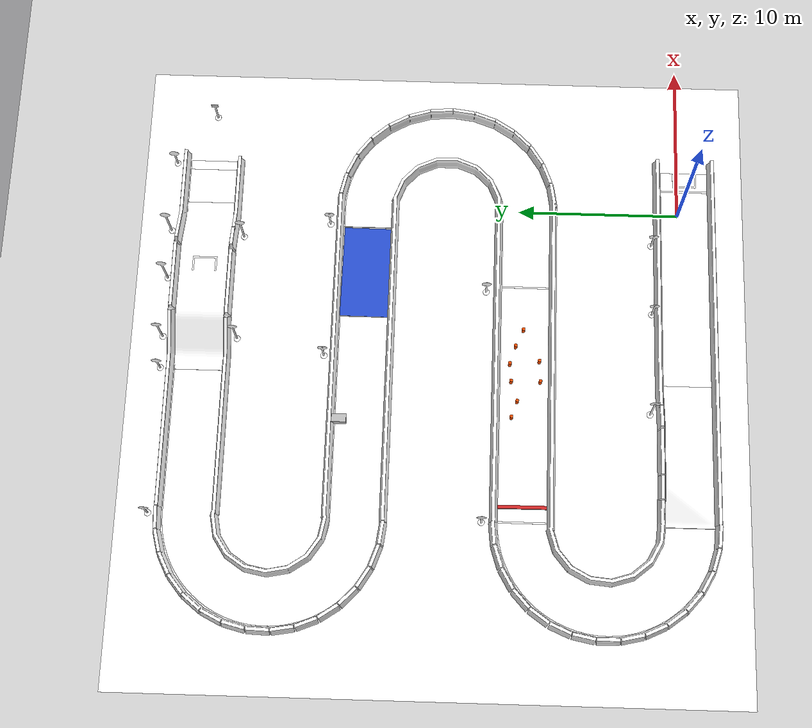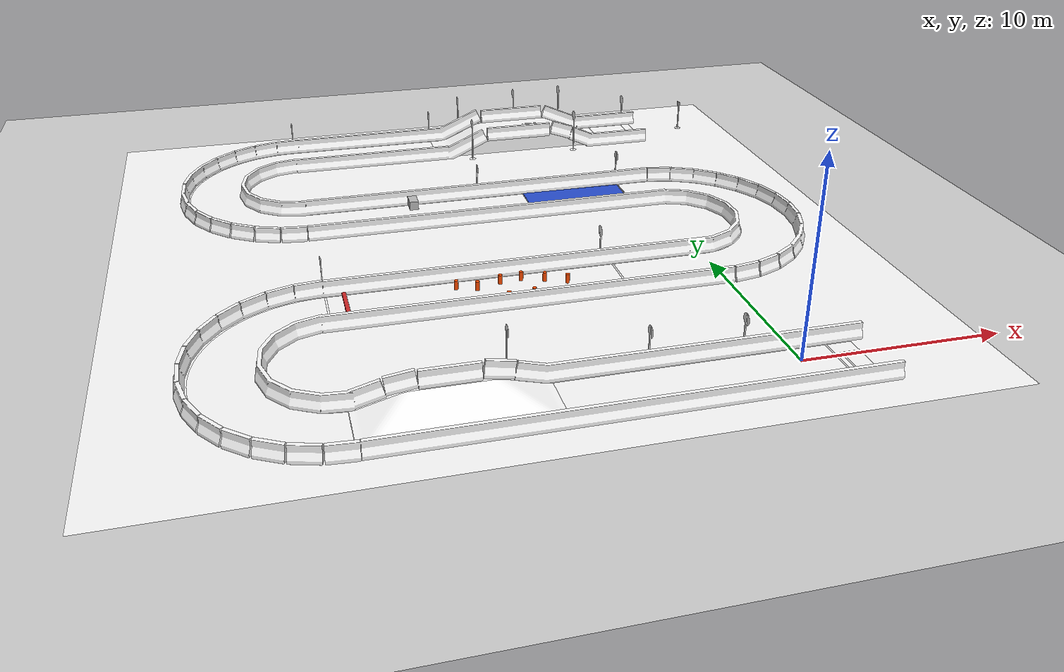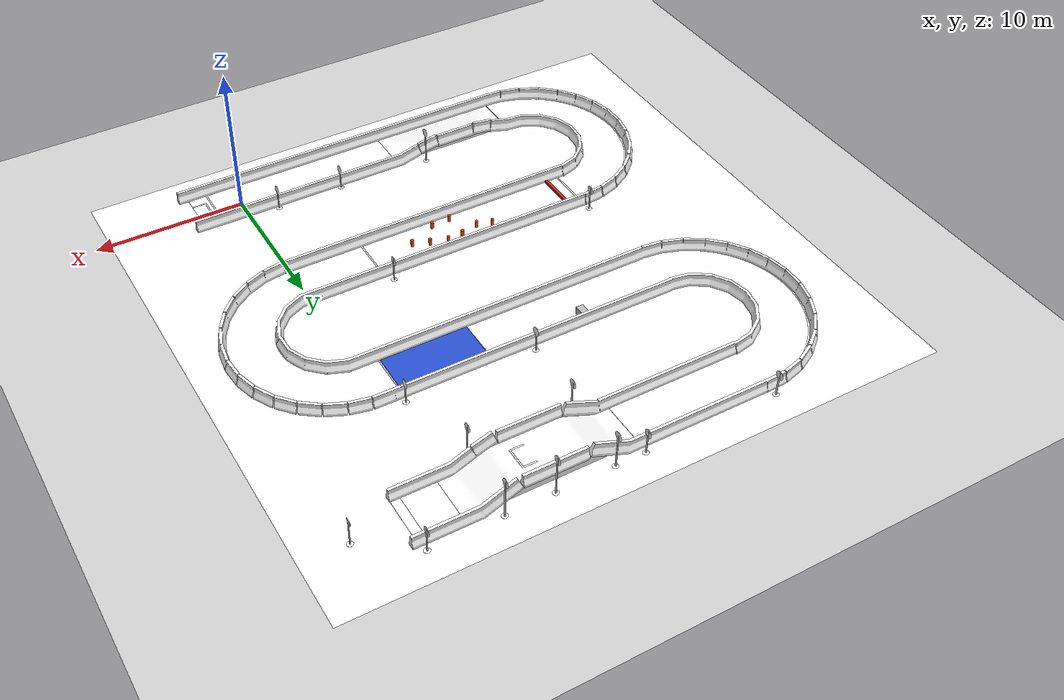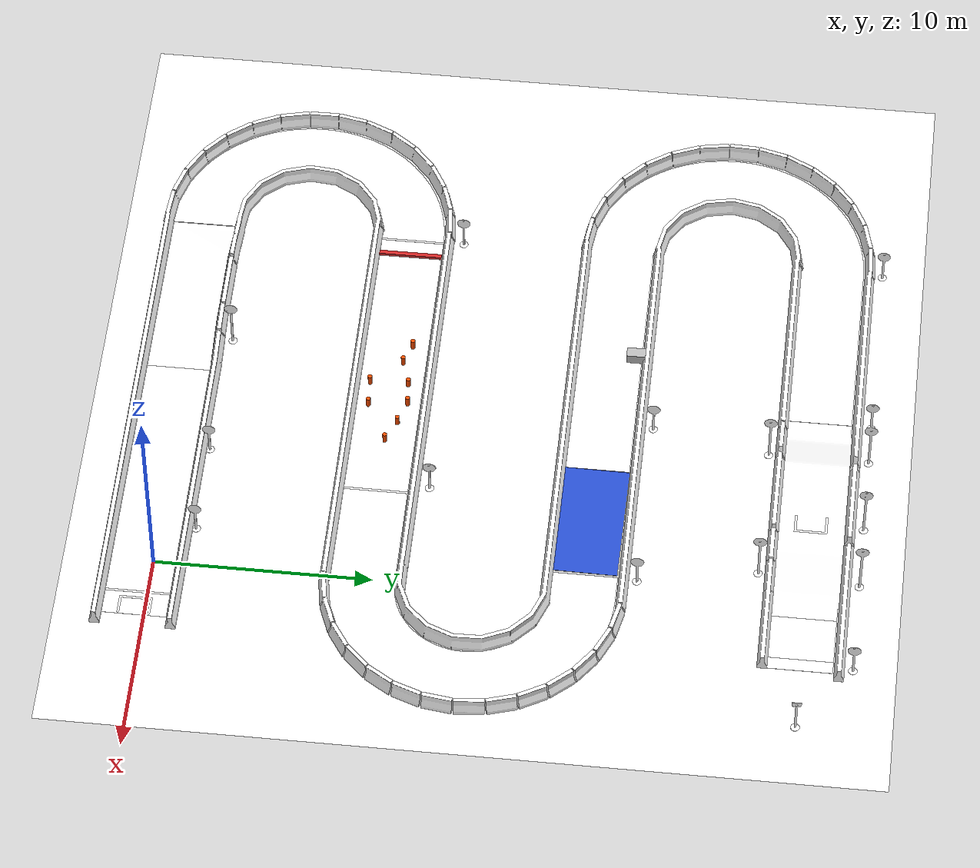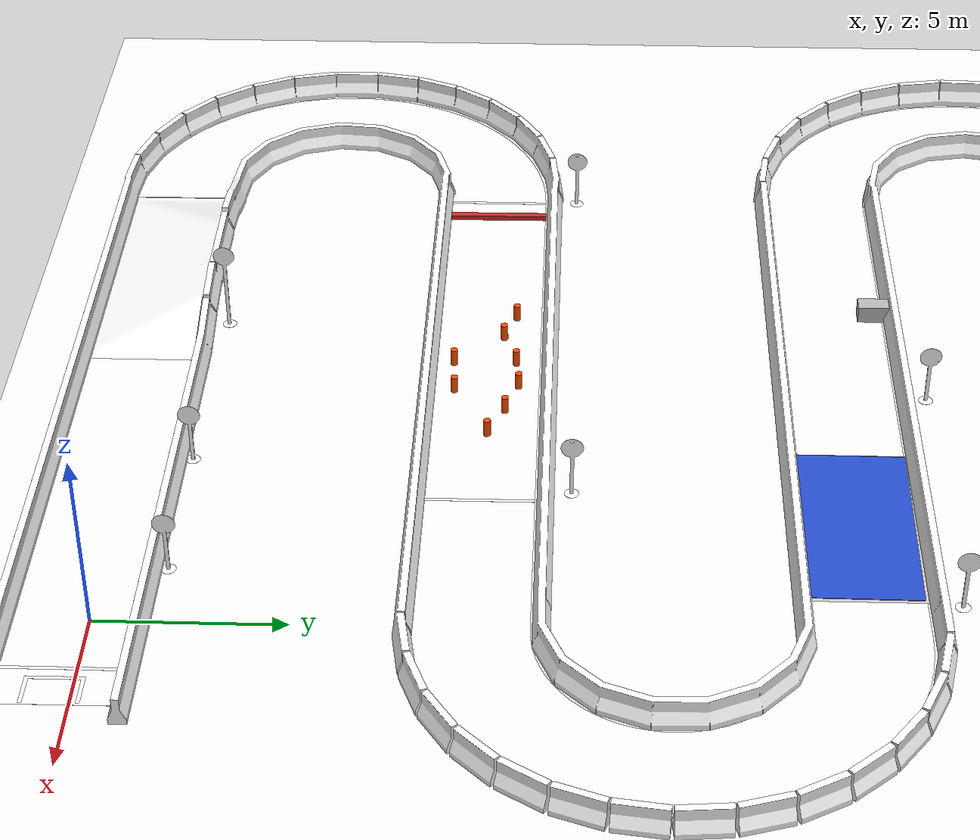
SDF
<?xml version="1.0" ?>
<sdf version="1.6">
  <world name="teknofest_parkur">

    <scene>
      <ambient>0.8 0.8 0.8 1.0</ambient>
      <background>0.7 0.7 0.7 1.0</background>
      <shadows>true</shadows>
    </scene>

    <include>
      <uri>model://sun</uri>
    </include>

    <include>
      <uri>model://ground_plane</uri>
    </include>

    <include>
      <uri>model://benim_kayar_engelim</uri>
      <name>kayar_engel_otomatik</name>
      <pose>-13.915580 20.793696 0.254990 0 0 0</pose>
    </include>

    <model name="ana_yol">
      <static>true</static>
      <pose>0 0 0.005 0 0 0</pose>
      <include>
        <uri>model://yol</uri>
      </include>
    </model>

    <gui fullscreen='0'>
      <camera name='user_camera'>
        <pose>5 -5 5 0 0.5 2.5</pose>
      </camera>
    </gui>

    <model name="bariyer_1">
      <static>true</static>
      <pose>-0.068165 0.057319 0.0 0 0 0</pose>
      <link name="bariyer_link">
        <visual name="bariyer_visual">
          <geometry>
            <mesh>
              <uri>file:///home/salih/Desktop/ika/src/ika_main/meshes/bariyer.dae</uri>
            </mesh>
          </geometry>
        </visual>
        <collision name="bariyer_collision">
          <geometry>
            <mesh>
              <uri>file:///home/salih/Desktop/ika/src/ika_main/meshes/bariyer.dae</uri>
            </mesh>
          </geometry>
        </collision>
      </link>
    </model>

    <model name="yan_egim_engeli">
      <static>true</static>
      <pose>0.024816 0.004860 0.0 0 0 0</pose>
      <link name="yan_egim_link">
        <visual name="yan_egim_visual">
          <geometry>
            <mesh>
              <uri>file:///home/salih/Desktop/ika/src/ika_main/meshes/yan_egim.dae</uri>
            </mesh>
          </geometry>
        </visual>
        <collision name="yan_egim_collision">
          <geometry>
            <mesh>
              <uri>file:///home/salih/Desktop/ika/src/ika_main/meshes/yan_egim.dae</uri>
            </mesh>
          </geometry>
        </collision>
      </link>
    </model>

    <model name="tum_tabelalar">
      <static>true</static>
      <pose>0.0 0.0 0.0 0 0 0</pose>
      <link name="tabela_link">
        <visual name="tabela_visual">
          <geometry>
            <mesh>
              <uri>file:///home/salih/Desktop/ika/src/ika_main/meshes/tabelalar.dae</uri>
            </mesh>
          </geometry>
        </visual>
        <collision name="tabela_collision">
          <geometry>
            <mesh>
              <uri>file:///home/salih/Desktop/ika/src/ika_main/meshes/tabelalar.dae</uri>
            </mesh>
          </geometry>
        </collision>
      </link>
    </model>

    <model name="dik_egim_engeli">
      <static>true</static>
      <pose>0.004304 0.050766 0.002 0 0 0</pose>
      <link name="dik_egim_link">
        <visual name="dik_egim_visual">
          <geometry>
            <mesh>
              <uri>file:///home/salih/Desktop/ika/src/ika_main/meshes/dik_egim.dae</uri>
            </mesh>
          </geometry>
        </visual>
        <collision name="dik_egim_collision">
          <geometry>
            <mesh>
              <uri>file:///home/salih/Desktop/ika/src/ika_main/meshes/dik_egim.dae</uri>
            </mesh>
          </geometry>
        </collision>
      </link>
    </model>

    <model name="zemin_model">
      <static>true</static>
      <pose>0.0 0.0 0.002 0 0 0</pose>
      <link name="zemin_link">
        <visual name="zemin_visual">
          <geometry>
            <mesh>
              <uri>file:///home/salih/Desktop/ika/src/ika_main/meshes/zemin.dae</uri>
            </mesh>
          </geometry>
        </visual>
        <collision name="zemin_collision">
          <geometry>
            <mesh>
              <uri>file:///home/salih/Desktop/ika/src/ika_main/meshes/zemin.dae</uri>
            </mesh>
          </geometry>
        </collision>
      </link>
    </model>

    <model name="cizgiler_model">
      <static>true</static>
      <pose>0.0 0.0 0.01 0 0 0</pose>
      <link name="cizgiler_link">
        <visual name="cizgiler_visual">
          <geometry>
            <mesh>
              <uri>file:///home/salih/Desktop/ika/src/ika_main/meshes/cizgiler.dae</uri>
            </mesh>
          </geometry>
        </visual>
      </link>
    </model>

    <model name='turuncu_duba_1'>
      <static>1</static>
      <pose>-13.518878 10.286131 0.250000 0 0 0</pose>
      <link name='link'>
        <collision name='collision'><geometry><cylinder><radius>0.1</radius><length>0.5</length></cylinder></geometry></collision>
        <visual name='visual'><geometry><cylinder><radius>0.1</radius><length>0.5</length></cylinder></geometry>
        <material><ambient>1 0.3 0 1</ambient><diffuse>1 0.3 0 1</diffuse></material></visual>
      </link>
    </model>

    <model name='turuncu_duba_2'>
      <static>1</static>
      <pose>-12.511695 9.943221 0.250000 0 0 0</pose>
      <link name='link'>
        <collision name='collision'><geometry><cylinder><radius>0.1</radius><length>0.5</length></cylinder></geometry></collision>
        <visual name='visual'><geometry><cylinder><radius>0.1</radius><length>0.5</length></cylinder></geometry>
        <material><ambient>1 0.3 0 1</ambient><diffuse>1 0.3 0 1</diffuse></material></visual>
      </link>
    </model>

    <model name='turuncu_duba_3'>
      <static>1</static>
      <pose>-10.139262 10.423759 0.250000 0 0 0</pose>
      <link name='link'>
        <collision name='collision'><geometry><cylinder><radius>0.1</radius><length>0.5</length></cylinder></geometry></collision>
        <visual name='visual'><geometry><cylinder><radius>0.1</radius><length>0.5</length></cylinder></geometry>
        <material><ambient>1 0.3 0 1</ambient><diffuse>1 0.3 0 1</diffuse></material></visual>
      </link>
    </model>

    <model name='turuncu_duba_4'>
      <static>1</static>
      <pose>-9.923812 8.613922 0.250000 0 0 0</pose>
      <link name='link'>
        <collision name='collision'><geometry><cylinder><radius>0.1</radius><length>0.5</length></cylinder></geometry></collision>
        <visual name='visual'><geometry><cylinder><radius>0.1</radius><length>0.5</length></cylinder></geometry>
        <material><ambient>1 0.3 0 1</ambient><diffuse>1 0.3 0 1</diffuse></material></visual>
      </link>
    </model>

    <model name='turuncu_duba_5'>
      <static>1</static>
      <pose>-7.922742 9.617785 0.250000 0 0 0</pose>
      <link name='link'>
        <collision name='collision'><geometry><cylinder><radius>0.1</radius><length>0.5</length></cylinder></geometry></collision>
        <visual name='visual'><geometry><cylinder><radius>0.1</radius><length>0.5</length></cylinder></geometry>
        <material><ambient>1 0.3 0 1</ambient><diffuse>1 0.3 0 1</diffuse></material></visual>
      </link>
    </model>

    <model name='turuncu_duba_6'>
      <static>1</static>
      <pose>-8.994950 10.076637 0.250000 0 0 0</pose>
      <link name='link'>
        <collision name='collision'><geometry><cylinder><radius>0.1</radius><length>0.5</length></cylinder></geometry></collision>
        <visual name='visual'><geometry><cylinder><radius>0.1</radius><length>0.5</length></cylinder></geometry>
        <material><ambient>1 0.3 0 1</ambient><diffuse>1 0.3 0 1</diffuse></material></visual>
      </link>
    </model>

    <model name='turuncu_duba_7'>
      <static>1</static>
      <pose>-11.232512 8.541602 0.250000 0 0 0</pose>
      <link name='link'>
        <collision name='collision'><geometry><cylinder><radius>0.1</radius><length>0.5</length></cylinder></geometry></collision>
        <visual name='visual'><geometry><cylinder><radius>0.1</radius><length>0.5</length></cylinder></geometry>
        <material><ambient>1 0.3 0 1</ambient><diffuse>1 0.3 0 1</diffuse></material></visual>
      </link>
    </model>

    <model name='turuncu_duba_8'>
      <static>1</static>
      <pose>-11.245355 10.330330 0.250000 0 0 0</pose>
      <link name='link'>
        <collision name='collision'><geometry><cylinder><radius>0.1</radius><length>0.5</length></cylinder></geometry></collision>
        <visual name='visual'><geometry><cylinder><radius>0.1</radius><length>0.5</length></cylinder></geometry>
        <material><ambient>1 0.3 0 1</ambient><diffuse>1 0.3 0 1</diffuse></material></visual>
      </link>
    </model>

    <model name='dik_engel_1'>
      <static>true</static>
      <pose>-19.027800 9.522151 0.086901 0.001265 0.004090 0.003263</pose>
      <link name='link'>
        <collision name='collision'>
          <geometry>
            <box>
              <size>0.2 3.0 0.15</size>
            </box>
          </geometry>
        </collision>
        <visual name='visual'>
          <geometry>
            <box>
              <size>0.2 3.0 0.15</size>
            </box>
          </geometry>
          <material>
            <script>
              <name>Gazebo/Red</name>
              <uri>file://media/materials/scripts/gazebo.material</uri>
            </script>
          </material>
        </visual>
      </link>
    </model>

    <model name='su_gecisi_havuzu'>
      <static>1</static>
      <pose>-4.305220 19.500645 0.010000 0 0 -1.581752</pose>
      <link name='link'>

        <collision name='collision'>
          <geometry>
            <box>
              <size>3.000000 5.865910 0.020000</size>
            </box>
          </geometry>
          <surface>
            <friction>
              <ode>
                <mu>0.1</mu>
                <mu2>0.1</mu2>
              </ode>
            </friction>
          </surface>
        </collision>

        <visual name='visual'>
          <geometry>
            <box>
              <size>3.000000 5.865910 0.020000</size>
            </box>
          </geometry>
          <material>
            <script>
              <name>Gazebo/Blue</name>
              <uri>file://media/materials/scripts/gazebo.material</uri>
            </script>
            <ambient>0 0.5 0.8 1</ambient>
            <diffuse>0 0.5 0.8 1</diffuse>
          </material>
        </visual>

      </link>
    </model>

  </world>
</sdf>

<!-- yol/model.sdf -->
<sdf version="1.6">
  <model name="yol">
    <static>true</static>
    <link name="link">
      <collision name="collision">
        <geometry>
          <mesh>
            <uri>model://yol/meshes/yol.dae</uri>
          </mesh>
        </geometry>
      </collision>
      <visual name="visual">
        <geometry>
          <mesh>
            <uri>model://yol/meshes/yol.dae</uri>
          </mesh>
        </geometry>
      </visual>
    </link>
  </model>
</sdf>

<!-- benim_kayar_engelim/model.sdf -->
<sdf version='1.6'>
  <model name='benim_kayar_engelim'>
    <static>false</static> <link name='link'>
      <inertial>
        <mass>1.0</mass>
      </inertial>

      <collision name='collision'>
        <geometry>
          <box>
            <size>0.5 1.0 0.5</size> </box>
        </geometry>
      </collision>

      <visual name='visual'>
        <geometry>
          <box>
            <size>0.5 1.0 0.5</size>
          </box>
        </geometry>
      </visual>
    </link>

    <plugin name="hareket_plugin" filename="libgazebo_ros_planar_move.so">
      <ros>
        <namespace>/engel</namespace>
        <remapping>cmd_vel:=cmd_vel</remapping>
      </ros>
      <update_rate>50.0</update_rate>
      <publish_odom>false</publish_odom>
      <robot_base_frame>link</robot_base_frame>
    </plugin>
  </model>
</sdf>
